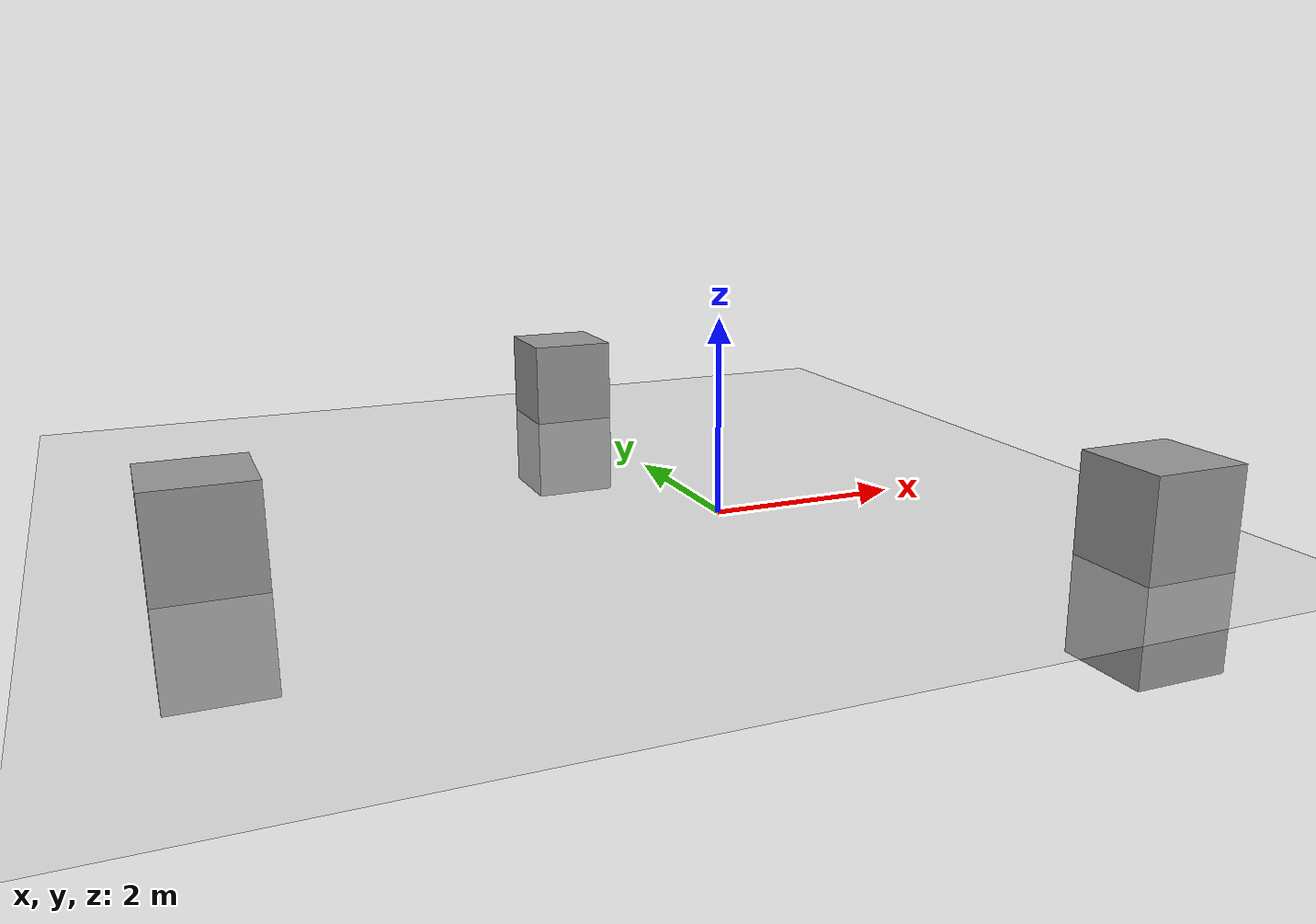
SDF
<?xml version="1.0" ?>
<sdf version="1.4">
  <world name="vrc_task_1">
    <!-- place user camera -->
    <gui>
      <camera name="user_camera">
        <pose>-21.660200 -11.942800 12.053900 0.000000 0.443643 0.352194</pose>
      </camera>
    </gui>
    <scene>
      <ambient>0.5 0.5 0.5 1.0</ambient>
      <grid>true</grid>
      <sky>
        <clouds>
          <speed>4</speed>
        </clouds>
      </sky>
    </scene>
    <physics type="ode">
      <gravity>0 0 -9.81</gravity>
      <ode>
        <solver>
          <use_dynamic_moi_rescaling>true</use_dynamic_moi_rescaling>
          <type>quick</type>
          <iters>50</iters>
	  <!-- Must be 1.0 ! Not any above number -->
          <sor>1.0</sor>
        </solver>
        <constraints>
          <cfm>0.0</cfm>
          <erp>0.2</erp>
          <contact_max_correcting_vel>100.0</contact_max_correcting_vel>
          <contact_surface_layer>0.0</contact_surface_layer>
        </constraints>
      </ode>
      <real_time_update_rate>1000</real_time_update_rate>
      <max_step_size>0.001</max_step_size>
    </physics>

    <!-- Light Source -->
    <light type="directional" name="sun">
      <cast_shadows>false</cast_shadows>
      <pose>0 0 100 0 0 0</pose>
      <diffuse>0.8 0.8 0.8 1</diffuse>
      <specular>0.9 0.9 0.9 1</specular>
      <attenuation>
        <range>1000</range>
        <constant>0.9</constant>
        <linear>0.01</linear>
        <quadratic>0.001</quadratic>
      </attenuation>
      <!-- Vertical direction, for easier position debug -->
      <direction>0 0 -1</direction>
    </light>

    <include>
      <uri>model://ground_plane</uri>
    </include>

    <!-- OBSTÁCULOS -->

	<model name='box1'>
	  <pose frame=''>-5 0 0 0 0 0</pose>
	  <link name='box1'>
		<collision name='collision'>
		  <geometry>
			<box>
			  <size>1 1 2</size>
			</box>
		  </geometry>
		</collision>
		<visual name='visual'>
		  <geometry>
			<box>
			  <size>1 1 2</size>
			</box>
		  </geometry>
		  <material>
			<script>
			  <name>Gazebo/Grey</name>
			  <uri>file://media/materials/scripts/gazebo.material</uri>
			</script>
		  </material>
		</visual>
	  </link>
	</model>

	<model name='box2'>
	  <pose frame=''>3 -3 0 0 0 0</pose>
	  <link name='box2'>
		<collision name='collision'>
		  <geometry>
			<box>
			  <size>1 1 2</size>
			</box>
		  </geometry>
		</collision>
		<visual name='visual'>
		  <geometry>
			<box>
			  <size>1 1 2</size>
			</box>
		  </geometry>
		  <material>
			<script>
			  <name>Gazebo/Grey</name>
			  <uri>file://media/materials/scripts/gazebo.material</uri>
			</script>
		  </material>
		</visual>
	  </link>
	</model>

    <model name='box3'>
	  <pose frame=''>0 5 0 0 0 0</pose>
	  <link name='box2'>
		<collision name='collision'>
		  <geometry>
			<box>
			  <size>1 1 2</size>
			</box>
		  </geometry>
		</collision>
		<visual name='visual'>
		  <geometry>
			<box>
			  <size>1 1 2</size>
			</box>
		  </geometry>
		  <material>
			<script>
			  <name>Gazebo/Grey</name>
			  <uri>file://media/materials/scripts/gazebo.material</uri>
			</script>
		  </material>
		</visual>
	  </link>
	</model>

	<!-- FINAL OBSTÁCULOS -->

    <plugin name="ardupilot_sitl_gazebo_plugin" filename="libardupilot_sitl_gazebo_plugin.so">
    <UAV_MODEL>erlecopter</UAV_MODEL>
    </plugin>
  </world>
</sdf>
